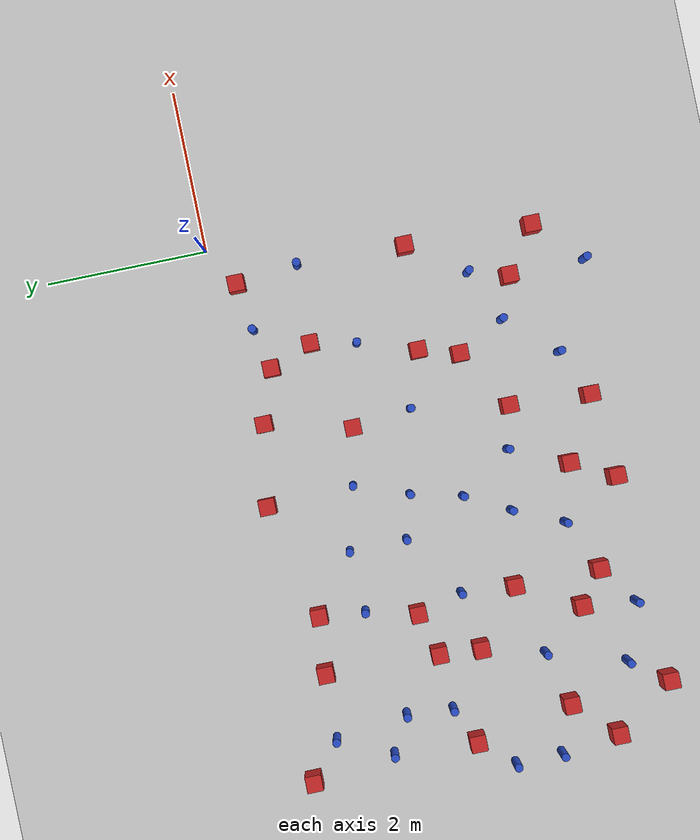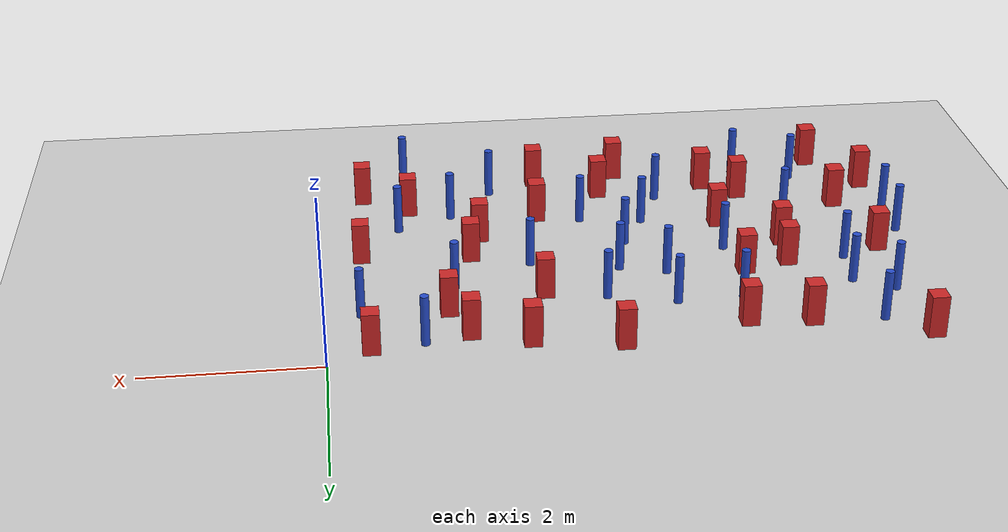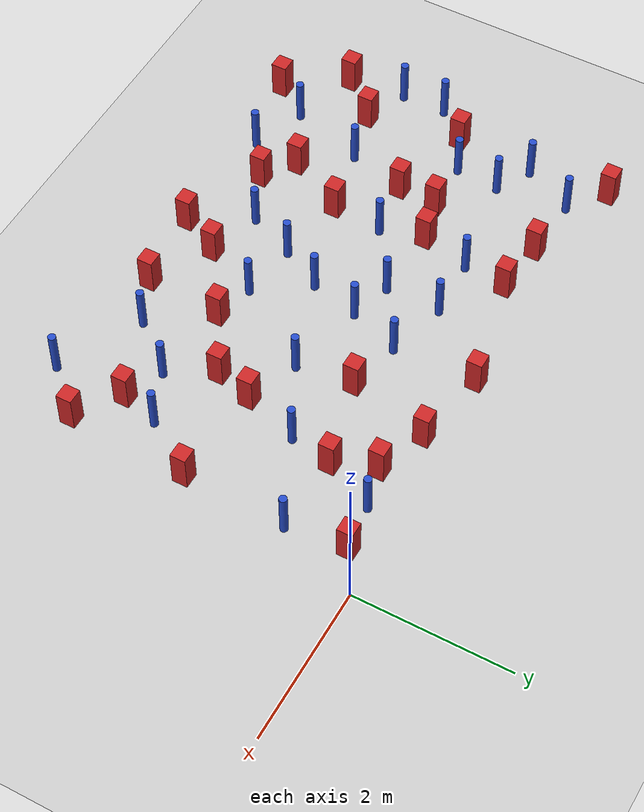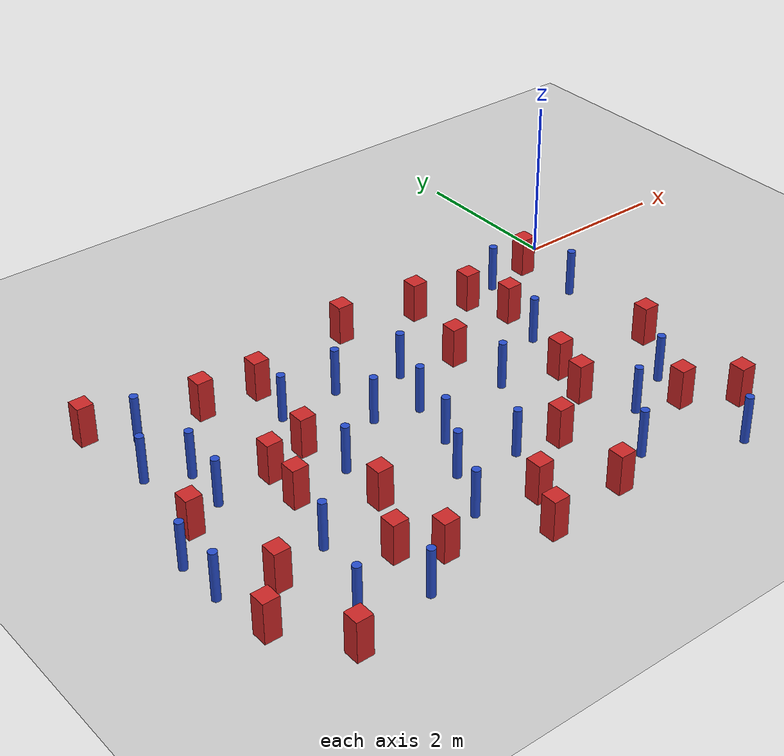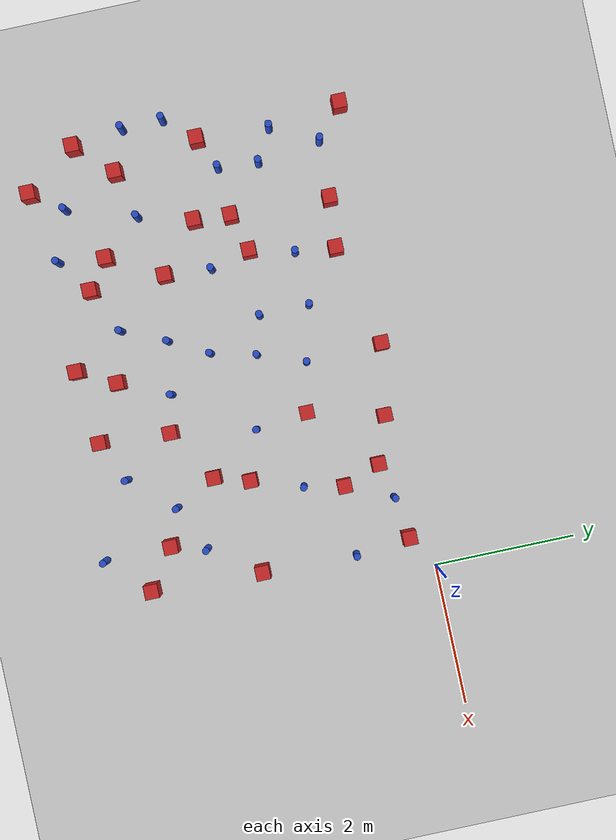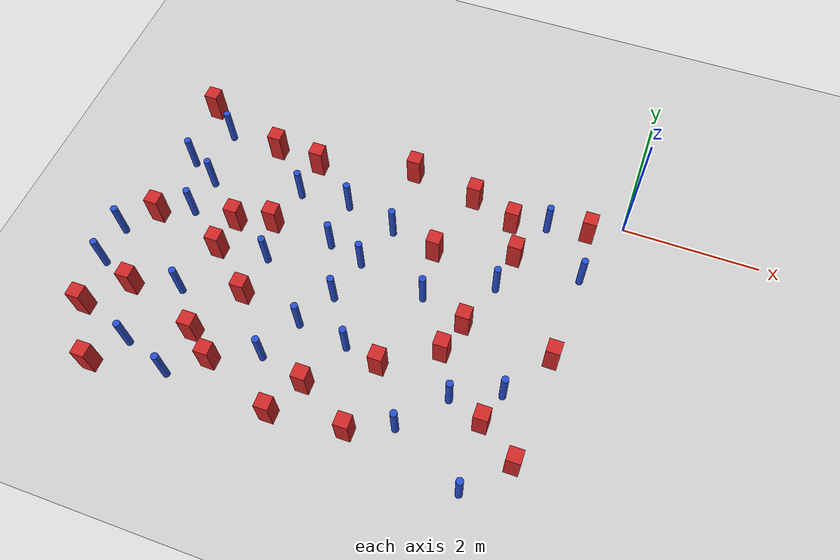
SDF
<sdf version="1.6">
 <world name="default">
  <model name="ground_plane">
   <static>1</static>
   <link name="link">
    <collision name="collision">
     <geometry><plane><normal>0 0 1</normal><size>100 100</size></plane></geometry>
     <surface><friction><ode><mu>100</mu><mu2>50</mu2></ode></friction></surface>
    </collision>
    <visual name="visual">
     <cast_shadows>0</cast_shadows>
     <geometry><plane><normal>0 0 1</normal><size>100 100</size></plane></geometry>
     <material>
      <ambient>1.0 1.0 1.0 1.0</ambient>
      <diffuse>0.8 0.8 0.8 1.0</diffuse>
      <specular>0.01 0.01 0.01 1.000000</specular>
     </material>
    </visual>
   </link>
  </model>
  <model name="pole_obstacle0">
   <static>true</static>
   <pose>-6.93956800883 -2.45011283821 7.38925637345e-09 -8.47170692798e-08 1.24976764937e-08 -1.74513093023e-07</pose>
   <link name="link">
    <pose>0 0 0.3 0 -0 0</pose>
    <inertial>
     <mass>1</mass>
     <inertia><ixx>0.145833</ixx><ixy>0</ixy><ixz>0</ixz><iyy>0.145833</iyy><iyz>0</iyz><izz>0.125</izz></inertia>
    </inertial>
    <collision name="collision">
     <geometry><cylinder><radius>0.05</radius><length>.6</length></cylinder></geometry>
    </collision>
    <visual name="visual">
     <geometry><cylinder><radius>0.05</radius><length>.6</length></cylinder></geometry>
     <material>
      <script><name>Gazebo/Blue</name><uri>file://media/materials/scripts/gazebo.material</uri></script>
     </material>
    </visual>
   </link>
  </model>
  <model name="square_post_obstacle5">
   <static>true</static>
   <pose>-6.35266890783 -3.25034243119 1.91545236811e-07 -7.35059704564e-06 1.12565212e-07 2.39332434364e-05</pose>
   <link name="link">
    <pose>0 0 0.25 0 -0 0</pose>
    <inertial>
     <mass>100</mass>
     <inertia>
      <ixx>0.166667</ixx>
      <ixy>0</ixy>
      <ixz>0</ixz>
      <iyy>0.166667</iyy>
      <iyz>0</iyz>
      <izz>0.166667</izz>
     </inertia>
    </inertial>
    <collision name="collision"><geometry><box><size>.2 .2 .5</size></box></geometry></collision>
    <visual name="visual">
     <geometry><box><size>.2 .2 .5</size></box></geometry>
     <material>
      <script><name>Gazebo/Red</name><uri>file://media/materials/scripts/gazebo.material</uri></script>
     </material>
    </visual>
   </link>
  </model>
  <model name="square_post_obstacle7">
   <static>true</static>
   <pose>-0.484492980676 -0.290630874998 1.91545236811e-07 -7.35059704564e-06 1.12565212e-07 2.39332434364e-05</pose>
   <link name="link">
    <pose>0 0 0.25 0 -0 0</pose>
    <inertial>
     <mass>100</mass>
     <inertia>
      <ixx>0.166667</ixx>
      <ixy>0</ixy>
      <ixz>0</ixz>
      <iyy>0.166667</iyy>
      <iyz>0</iyz>
      <izz>0.166667</izz>
     </inertia>
    </inertial>
    <collision name="collision"><geometry><box><size>.2 .2 .5</size></box></geometry></collision>
    <visual name="visual">
     <geometry><box><size>.2 .2 .5</size></box></geometry>
     <material>
      <script><name>Gazebo/Red</name><uri>file://media/materials/scripts/gazebo.material</uri></script>
     </material>
    </visual>
   </link>
  </model>
  <model name="square_post_obstacle9">
   <static>true</static>
   <pose>-4.67292048843 -0.449817612617 1.91545236811e-07 -7.35059704564e-06 1.12565212e-07 2.39332434364e-05</pose>
   <link name="link">
    <pose>0 0 0.25 0 -0 0</pose>
    <inertial>
     <mass>100</mass>
     <inertia>
      <ixx>0.166667</ixx>
      <ixy>0</ixy>
      <ixz>0</ixz>
      <iyy>0.166667</iyy>
      <iyz>0</iyz>
      <izz>0.166667</izz>
     </inertia>
    </inertial>
    <collision name="collision"><geometry><box><size>.2 .2 .5</size></box></geometry></collision>
    <visual name="visual">
     <geometry><box><size>.2 .2 .5</size></box></geometry>
     <material>
      <script><name>Gazebo/Red</name><uri>file://media/materials/scripts/gazebo.material</uri></script>
     </material>
    </visual>
   </link>
  </model>
  <model name="pole_obstacle15">
   <static>true</static>
   <pose>-2.09844437394 -3.99238147252 7.38925637345e-09 -8.47170692797e-08 1.24976764881e-08 -1.74513093029e-07</pose>
   <link name="link">
    <pose>0 0 0.3 0 -0 0</pose>
    <inertial>
     <mass>1</mass>
     <inertia><ixx>0.145833</ixx><ixy>0</ixy><ixz>0</ixz><iyy>0.145833</iyy><iyz>0</iyz><izz>0.125</izz></inertia>
    </inertial>
    <collision name="collision">
     <geometry><cylinder><radius>0.05</radius><length>.6</length></cylinder></geometry>
    </collision>
    <visual name="visual">
     <geometry><cylinder><radius>0.05</radius><length>.6</length></cylinder></geometry>
     <material>
      <script><name>Gazebo/Blue</name><uri>file://media/materials/scripts/gazebo.material</uri></script>
     </material>
    </visual>
   </link>
  </model>
  <model name="pole_obstacle17">
   <static>true</static>
   <pose>-5.68042597307 -3.07643465659 7.38925637345e-09 -8.47170692798e-08 1.24976764937e-08 -1.74513093023e-07</pose>
   <link name="link">
    <pose>0 0 0.3 0 -0 0</pose>
    <inertial>
     <mass>1</mass>
     <inertia><ixx>0.145833</ixx><ixy>0</ixy><ixz>0</ixz><iyy>0.145833</iyy><iyz>0</iyz><izz>0.125</izz></inertia>
    </inertial>
    <collision name="collision">
     <geometry><cylinder><radius>0.05</radius><length>.6</length></cylinder></geometry>
    </collision>
    <visual name="visual">
     <geometry><cylinder><radius>0.05</radius><length>.6</length></cylinder></geometry>
     <material>
      <script><name>Gazebo/Blue</name><uri>file://media/materials/scripts/gazebo.material</uri></script>
     </material>
    </visual>
   </link>
  </model>
  <model name="square_post_obstacle26">
   <static>true</static>
   <pose>-5.37728125611 -0.385562265781 1.91545236811e-07 -7.35059704564e-06 1.12565212e-07 2.39332434364e-05</pose>
   <link name="link">
    <pose>0 0 0.25 0 -0 0</pose>
    <inertial>
     <mass>100</mass>
     <inertia>
      <ixx>0.166667</ixx>
      <ixy>0</ixy>
      <ixz>0</ixz>
      <iyy>0.166667</iyy>
      <iyz>0</iyz>
      <izz>0.166667</izz>
     </inertia>
    </inertial>
    <collision name="collision"><geometry><box><size>.2 .2 .5</size></box></geometry></collision>
    <visual name="visual">
     <geometry><box><size>.2 .2 .5</size></box></geometry>
     <material>
      <script><name>Gazebo/Red</name><uri>file://media/materials/scripts/gazebo.material</uri></script>
     </material>
    </visual>
   </link>
  </model>
  <model name="square_post_obstacle30">
   <static>true</static>
   <pose>-1.06029108826 -3.57707996638 1.91545236811e-07 -7.35059704564e-06 1.12565212e-07 2.39332434364e-05</pose>
   <link name="link">
    <pose>0 0 0.25 0 -0 0</pose>
    <inertial>
     <mass>100</mass>
     <inertia>
      <ixx>0.166667</ixx>
      <ixy>0</ixy>
      <ixz>0</ixz>
      <iyy>0.166667</iyy>
      <iyz>0</iyz>
      <izz>0.166667</izz>
     </inertia>
    </inertial>
    <collision name="collision"><geometry><box><size>.2 .2 .5</size></box></geometry></collision>
    <visual name="visual">
     <geometry><box><size>.2 .2 .5</size></box></geometry>
     <material>
      <script><name>Gazebo/Red</name><uri>file://media/materials/scripts/gazebo.material</uri></script>
     </material>
    </visual>
   </link>
  </model>
  <model name="pole_obstacle24">
   <static>true</static>
   <pose>-6.51897693069 -1.00974621083 7.38925637345e-09 -8.471706928e-08 1.24976765101e-08 -1.74513093015e-07</pose>
   <link name="link">
    <pose>0 0 0.3 0 -0 0</pose>
    <inertial>
     <mass>1</mass>
     <inertia><ixx>0.145833</ixx><ixy>0</ixy><ixz>0</ixz><iyy>0.145833</iyy><iyz>0</iyz><izz>0.125</izz></inertia>
    </inertial>
    <collision name="collision">
     <geometry><cylinder><radius>0.05</radius><length>.6</length></cylinder></geometry>
    </collision>
    <visual name="visual">
     <geometry><cylinder><radius>0.05</radius><length>.6</length></cylinder></geometry>
     <material>
      <script><name>Gazebo/Blue</name><uri>file://media/materials/scripts/gazebo.material</uri></script>
     </material>
    </visual>
   </link>
  </model>
  <model name="square_post_obstacle34">
   <static>true</static>
   <pose>-1.72919010458 -2.29908930222 1.91545236811e-07 -7.35059704564e-06 1.12565212e-07 2.39332434364e-05</pose>
   <link name="link">
    <pose>0 0 0.25 0 -0 0</pose>
    <inertial>
     <mass>100</mass>
     <inertia>
      <ixx>0.166667</ixx>
      <ixy>0</ixy>
      <ixz>0</ixz>
      <iyy>0.166667</iyy>
      <iyz>0</iyz>
      <izz>0.166667</izz>
     </inertia>
    </inertial>
    <collision name="collision"><geometry><box><size>.2 .2 .5</size></box></geometry></collision>
    <visual name="visual">
     <geometry><box><size>.2 .2 .5</size></box></geometry>
     <material>
      <script><name>Gazebo/Red</name><uri>file://media/materials/scripts/gazebo.material</uri></script>
     </material>
    </visual>
   </link>
  </model>
  <model name="pole_obstacle37">
   <static>true</static>
   <pose>-6.07242081423 -1.25559819052 7.38925637345e-09 -8.471706928e-08 1.24976765134e-08 -1.74513093015e-07</pose>
   <link name="link">
    <pose>0 0 0.3 0 -0 0</pose>
    <inertial>
     <mass>1</mass>
     <inertia><ixx>0.145833</ixx><ixy>0</ixy><ixz>0</ixz><iyy>0.145833</iyy><iyz>0</iyz><izz>0.125</izz></inertia>
    </inertial>
    <collision name="collision">
     <geometry><cylinder><radius>0.05</radius><length>.6</length></cylinder></geometry>
    </collision>
    <visual name="visual">
     <geometry><cylinder><radius>0.05</radius><length>.6</length></cylinder></geometry>
     <material>
      <script><name>Gazebo/Blue</name><uri>file://media/materials/scripts/gazebo.material</uri></script>
     </material>
    </visual>
   </link>
  </model>
  <model name="square_post_obstacle38">
   <static>true</static>
   <pose>-6.63923074529 0.0228386776194 1.91545236811e-07 -7.35059704564e-06 1.12565212e-07 2.39332434364e-05</pose>
   <link name="link">
    <pose>0 0 0.25 0 -0 0</pose>
    <inertial>
     <mass>100</mass>
     <inertia>
      <ixx>0.166667</ixx>
      <ixy>0</ixy>
      <ixz>0</ixz>
      <iyy>0.166667</iyy>
      <iyz>0</iyz>
      <izz>0.166667</izz>
     </inertia>
    </inertial>
    <collision name="collision"><geometry><box><size>.2 .2 .5</size></box></geometry></collision>
    <visual name="visual">
     <geometry><box><size>.2 .2 .5</size></box></geometry>
     <material>
      <script><name>Gazebo/Red</name><uri>file://media/materials/scripts/gazebo.material</uri></script>
     </material>
    </visual>
   </link>
  </model>
  <model name="square_post_obstacle41">
   <static>true</static>
   <pose>-5.20414122373 -3.62971018988 1.91545236811e-07 -7.35059704564e-06 1.12565212e-07 2.39332434364e-05</pose>
   <link name="link">
    <pose>0 0 0.25 0 -0 0</pose>
    <inertial>
     <mass>100</mass>
     <inertia>
      <ixx>0.166667</ixx>
      <ixy>0</ixy>
      <ixz>0</ixz>
      <iyy>0.166667</iyy>
      <iyz>0</iyz>
      <izz>0.166667</izz>
     </inertia>
    </inertial>
    <collision name="collision"><geometry><box><size>.2 .2 .5</size></box></geometry></collision>
    <visual name="visual">
     <geometry><box><size>.2 .2 .5</size></box></geometry>
     <material>
      <script><name>Gazebo/Red</name><uri>file://media/materials/scripts/gazebo.material</uri></script>
     </material>
    </visual>
   </link>
  </model>
  <model name="square_post_obstacle43">
   <static>true</static>
   <pose>-1.87515390521 -2.79060065097 1.91545236811e-07 -7.35059704564e-06 1.12565212e-07 2.39332434364e-05</pose>
   <link name="link">
    <pose>0 0 0.25 0 -0 0</pose>
    <inertial>
     <mass>100</mass>
     <inertia>
      <ixx>0.166667</ixx>
      <ixy>0</ixy>
      <ixz>0</ixz>
      <iyy>0.166667</iyy>
      <iyz>0</iyz>
      <izz>0.166667</izz>
     </inertia>
    </inertial>
    <collision name="collision"><geometry><box><size>.2 .2 .5</size></box></geometry></collision>
    <visual name="visual">
     <geometry><box><size>.2 .2 .5</size></box></geometry>
     <material>
      <script><name>Gazebo/Red</name><uri>file://media/materials/scripts/gazebo.material</uri></script>
     </material>
    </visual>
   </link>
  </model>
  <model name="pole_obstacle49">
   <static>true</static>
   <pose>-3.43609677843 -1.84355666818 7.38925637345e-09 -8.47170692796e-08 1.24976764713e-08 -1.74513093037e-07</pose>
   <link name="link">
    <pose>0 0 0.3 0 -0 0</pose>
    <inertial>
     <mass>1</mass>
     <inertia><ixx>0.145833</ixx><ixy>0</ixy><ixz>0</ixz><iyy>0.145833</iyy><iyz>0</iyz><izz>0.125</izz></inertia>
    </inertial>
    <collision name="collision">
     <geometry><cylinder><radius>0.05</radius><length>.6</length></cylinder></geometry>
    </collision>
    <visual name="visual">
     <geometry><cylinder><radius>0.05</radius><length>.6</length></cylinder></geometry>
     <material>
      <script><name>Gazebo/Blue</name><uri>file://media/materials/scripts/gazebo.material</uri></script>
     </material>
    </visual>
   </link>
  </model>
  <model name="square_post_obstacle50">
   <static>true</static>
   <pose>-5.42647552614 -1.79409149447 1.91545236811e-07 -7.35059704564e-06 1.12565212e-07 2.39332434364e-05</pose>
   <link name="link">
    <pose>0 0 0.25 0 -0 0</pose>
    <inertial>
     <mass>100</mass>
     <inertia>
      <ixx>0.166667</ixx>
      <ixy>0</ixy>
      <ixz>0</ixz>
      <iyy>0.166667</iyy>
      <iyz>0</iyz>
      <izz>0.166667</izz>
     </inertia>
    </inertial>
    <collision name="collision"><geometry><box><size>.2 .2 .5</size></box></geometry></collision>
    <visual name="visual">
     <geometry><box><size>.2 .2 .5</size></box></geometry>
     <material>
      <script><name>Gazebo/Red</name><uri>file://media/materials/scripts/gazebo.material</uri></script>
     </material>
    </visual>
   </link>
  </model>
  <model name="square_post_obstacle67">
   <static>true</static>
   <pose>-6.82766782589 -3.75052661723 1.91545236811e-07 -7.35059704564e-06 1.12565212e-07 2.39332434364e-05</pose>
   <link name="link">
    <pose>0 0 0.25 0 -0 0</pose>
    <inertial>
     <mass>100</mass>
     <inertia>
      <ixx>0.166667</ixx>
      <ixy>0</ixy>
      <ixz>0</ixz>
      <iyy>0.166667</iyy>
      <iyz>0</iyz>
      <izz>0.166667</izz>
     </inertia>
    </inertial>
    <collision name="collision"><geometry><box><size>.2 .2 .5</size></box></geometry></collision>
    <visual name="visual">
     <geometry><box><size>.2 .2 .5</size></box></geometry>
     <material>
      <script><name>Gazebo/Red</name><uri>file://media/materials/scripts/gazebo.material</uri></script>
     </material>
    </visual>
   </link>
  </model>
  <model name="square_post_obstacle73">
   <static>true</static>
   <pose>-3.23104048398 -0.105972794465 1.91545236811e-07 -7.35059704564e-06 1.12565212e-07 2.39332434364e-05</pose>
   <link name="link">
    <pose>0 0 0.25 0 -0 0</pose>
    <inertial>
     <mass>100</mass>
     <inertia>
      <ixx>0.166667</ixx>
      <ixy>0</ixy>
      <ixz>0</ixz>
      <iyy>0.166667</iyy>
      <iyz>0</iyz>
      <izz>0.166667</izz>
     </inertia>
    </inertial>
    <collision name="collision"><geometry><box><size>.2 .2 .5</size></box></geometry></collision>
    <visual name="visual">
     <geometry><box><size>.2 .2 .5</size></box></geometry>
     <material>
      <script><name>Gazebo/Red</name><uri>file://media/materials/scripts/gazebo.material</uri></script>
     </material>
    </visual>
   </link>
  </model>
  <model name="square_post_obstacle76">
   <static>true</static>
   <pose>-1.38005092235 -1.0269054102 1.91545236811e-07 -7.35059704564e-06 1.12565212e-07 2.39332434364e-05</pose>
   <link name="link">
    <pose>0 0 0.25 0 -0 0</pose>
    <inertial>
     <mass>100</mass>
     <inertia>
      <ixx>0.166667</ixx>
      <ixy>0</ixy>
      <ixz>0</ixz>
      <iyy>0.166667</iyy>
      <iyz>0</iyz>
      <izz>0.166667</izz>
     </inertia>
    </inertial>
    <collision name="collision"><geometry><box><size>.2 .2 .5</size></box></geometry></collision>
    <visual name="visual">
     <geometry><box><size>.2 .2 .5</size></box></geometry>
     <material>
      <script><name>Gazebo/Red</name><uri>file://media/materials/scripts/gazebo.material</uri></script>
     </material>
    </visual>
   </link>
  </model>
  <model name="pole_obstacle77">
   <static>true</static>
   <pose>-3.8844210075 -3.02367985368 7.38925637345e-09 -8.47170692798e-08 1.24976764939e-08 -1.74513093025e-07</pose>
   <link name="link">
    <pose>0 0 0.3 0 -0 0</pose>
    <inertial>
     <mass>1</mass>
     <inertia><ixx>0.145833</ixx><ixy>0</ixy><ixz>0</ixz><iyy>0.145833</iyy><iyz>0</iyz><izz>0.125</izz></inertia>
    </inertial>
    <collision name="collision">
     <geometry><cylinder><radius>0.05</radius><length>.6</length></cylinder></geometry>
    </collision>
    <visual name="visual">
     <geometry><cylinder><radius>0.05</radius><length>.6</length></cylinder></geometry>
     <material>
      <script><name>Gazebo/Blue</name><uri>file://media/materials/scripts/gazebo.material</uri></script>
     </material>
    </visual>
   </link>
  </model>
  <model name="square_post_obstacle77">
   <static>true</static>
   <pose>-4.79870245917 -2.87024151157 1.91545236811e-07 -7.35059704564e-06 1.12565212e-07 2.39332434364e-05</pose>
   <link name="link">
    <pose>0 0 0.25 0 -0 0</pose>
    <inertial>
     <mass>100</mass>
     <inertia>
      <ixx>0.166667</ixx>
      <ixy>0</ixy>
      <ixz>0</ixz>
      <iyy>0.166667</iyy>
      <iyz>0</iyz>
      <izz>0.166667</izz>
     </inertia>
    </inertial>
    <collision name="collision"><geometry><box><size>.2 .2 .5</size></box></geometry></collision>
    <visual name="visual">
     <geometry><box><size>.2 .2 .5</size></box></geometry>
     <material>
      <script><name>Gazebo/Red</name><uri>file://media/materials/scripts/gazebo.material</uri></script>
     </material>
    </visual>
   </link>
  </model>
  <model name="pole_obstacle79">
   <static>true</static>
   <pose>-5.98512218536 -4.04208488836 7.38925637345e-09 -8.47170692796e-08 1.24976764791e-08 -1.74513093031e-07</pose>
   <link name="link">
    <pose>0 0 0.3 0 -0 0</pose>
    <inertial>
     <mass>1</mass>
     <inertia><ixx>0.145833</ixx><ixy>0</ixy><ixz>0</ixz><iyy>0.145833</iyy><iyz>0</iyz><izz>0.125</izz></inertia>
    </inertial>
    <collision name="collision">
     <geometry><cylinder><radius>0.05</radius><length>.6</length></cylinder></geometry>
    </collision>
    <visual name="visual">
     <geometry><cylinder><radius>0.05</radius><length>.6</length></cylinder></geometry>
     <material>
      <script><name>Gazebo/Blue</name><uri>file://media/materials/scripts/gazebo.material</uri></script>
     </material>
    </visual>
   </link>
  </model>
  <model name="pole_obstacle80">
   <static>true</static>
   <pose>-4.16194192164 -3.64056064033 7.38925637345e-09 -8.47170692798e-08 1.24976764937e-08 -1.74513093023e-07</pose>
   <link name="link">
    <pose>0 0 0.3 0 -0 0</pose>
    <inertial>
     <mass>1</mass>
     <inertia><ixx>0.145833</ixx><ixy>0</ixy><ixz>0</ixz><iyy>0.145833</iyy><iyz>0</iyz><izz>0.125</izz></inertia>
    </inertial>
    <collision name="collision">
     <geometry><cylinder><radius>0.05</radius><length>.6</length></cylinder></geometry>
    </collision>
    <visual name="visual">
     <geometry><cylinder><radius>0.05</radius><length>.6</length></cylinder></geometry>
     <material>
      <script><name>Gazebo/Blue</name><uri>file://media/materials/scripts/gazebo.material</uri></script>
     </material>
    </visual>
   </link>
  </model>
  <model name="pole_obstacle91">
   <static>true</static>
   <pose>-6.93099663642 -3.03149222873 7.38925637345e-09 -8.47170692798e-08 1.24976764937e-08 -1.74513093023e-07</pose>
   <link name="link">
    <pose>0 0 0.3 0 -0 0</pose>
    <inertial>
     <mass>1</mass>
     <inertia><ixx>0.145833</ixx><ixy>0</ixy><ixz>0</ixz><iyy>0.145833</iyy><iyz>0</iyz><izz>0.125</izz></inertia>
    </inertial>
    <collision name="collision">
     <geometry><cylinder><radius>0.05</radius><length>.6</length></cylinder></geometry>
    </collision>
    <visual name="visual">
     <geometry><cylinder><radius>0.05</radius><length>.6</length></cylinder></geometry>
     <material>
      <script><name>Gazebo/Blue</name><uri>file://media/materials/scripts/gazebo.material</uri></script>
     </material>
    </visual>
   </link>
  </model>
  <model name="pole_obstacle95">
   <static>true</static>
   <pose>-3.96931506891 -1.68995859317 7.38925637345e-09 -8.47170692799e-08 1.24976765021e-08 -1.7451309302e-07</pose>
   <link name="link">
    <pose>0 0 0.3 0 -0 0</pose>
    <inertial>
     <mass>1</mass>
     <inertia><ixx>0.145833</ixx><ixy>0</ixy><ixz>0</ixz><iyy>0.145833</iyy><iyz>0</iyz><izz>0.125</izz></inertia>
    </inertial>
    <collision name="collision">
     <geometry><cylinder><radius>0.05</radius><length>.6</length></cylinder></geometry>
    </collision>
    <visual name="visual">
     <geometry><cylinder><radius>0.05</radius><length>.6</length></cylinder></geometry>
     <material>
      <script><name>Gazebo/Blue</name><uri>file://media/materials/scripts/gazebo.material</uri></script>
     </material>
    </visual>
   </link>
  </model>
  <model name="pole_obstacle96">
   <static>true</static>
   <pose>-1.04377152851 -4.52797469942 7.38925637345e-09 -8.47170692799e-08 1.2497676505e-08 -1.74513093018e-07</pose>
   <link name="link">
    <pose>0 0 0.3 0 -0 0</pose>
    <inertial>
     <mass>1</mass>
     <inertia><ixx>0.145833</ixx><ixy>0</ixy><ixz>0</ixz><iyy>0.145833</iyy><iyz>0</iyz><izz>0.125</izz></inertia>
    </inertial>
    <collision name="collision">
     <geometry><cylinder><radius>0.05</radius><length>.6</length></cylinder></geometry>
    </collision>
    <visual name="visual">
     <geometry><cylinder><radius>0.05</radius><length>.6</length></cylinder></geometry>
     <material>
      <script><name>Gazebo/Blue</name><uri>file://media/materials/scripts/gazebo.material</uri></script>
     </material>
    </visual>
   </link>
  </model>
  <model name="square_post_obstacle87">
   <static>true</static>
   <pose>-3.45733803492 -3.83261932024 1.91545236811e-07 -7.35059704564e-06 1.12565212e-07 2.39332434364e-05</pose>
   <link name="link">
    <pose>0 0 0.25 0 -0 0</pose>
    <inertial>
     <mass>100</mass>
     <inertia>
      <ixx>0.166667</ixx>
      <ixy>0</ixy>
      <ixz>0</ixz>
      <iyy>0.166667</iyy>
      <iyz>0</iyz>
      <izz>0.166667</izz>
     </inertia>
    </inertial>
    <collision name="collision"><geometry><box><size>.2 .2 .5</size></box></geometry></collision>
    <visual name="visual">
     <geometry><box><size>.2 .2 .5</size></box></geometry>
     <material>
      <script><name>Gazebo/Red</name><uri>file://media/materials/scripts/gazebo.material</uri></script>
     </material>
    </visual>
   </link>
  </model>
  <model name="square_post_obstacle89">
   <static>true</static>
   <pose>-0.510896934147 -3.96607854816 1.91545236811e-07 -7.35059704564e-06 1.12565212e-07 2.39332434364e-05</pose>
   <link name="link">
    <pose>0 0 0.25 0 -0 0</pose>
    <inertial>
     <mass>100</mass>
     <inertia>
      <ixx>0.166667</ixx>
      <ixy>0</ixy>
      <ixz>0</ixz>
      <iyy>0.166667</iyy>
      <iyz>0</iyz>
      <izz>0.166667</izz>
     </inertia>
    </inertial>
    <collision name="collision"><geometry><box><size>.2 .2 .5</size></box></geometry></collision>
    <visual name="visual">
     <geometry><box><size>.2 .2 .5</size></box></geometry>
     <material>
      <script><name>Gazebo/Red</name><uri>file://media/materials/scripts/gazebo.material</uri></script>
     </material>
    </visual>
   </link>
  </model>
  <model name="square_post_obstacle91">
   <static>true</static>
   <pose>-4.80102907581 -3.93107686862 1.91545236811e-07 -7.35059704564e-06 1.12565212e-07 2.39332434364e-05</pose>
   <link name="link">
    <pose>0 0 0.25 0 -0 0</pose>
    <inertial>
     <mass>100</mass>
     <inertia>
      <ixx>0.166667</ixx>
      <ixy>0</ixy>
      <ixz>0</ixz>
      <iyy>0.166667</iyy>
      <iyz>0</iyz>
      <izz>0.166667</izz>
     </inertia>
    </inertial>
    <collision name="collision"><geometry><box><size>.2 .2 .5</size></box></geometry></collision>
    <visual name="visual">
     <geometry><box><size>.2 .2 .5</size></box></geometry>
     <material>
      <script><name>Gazebo/Red</name><uri>file://media/materials/scripts/gazebo.material</uri></script>
     </material>
    </visual>
   </link>
  </model>
  <model name="square_post_obstacle93">
   <static>true</static>
   <pose>-2.49647610303 -1.32595353818 1.91545236811e-07 -7.35059704564e-06 1.12565212e-07 2.39332434364e-05</pose>
   <link name="link">
    <pose>0 0 0.25 0 -0 0</pose>
    <inertial>
     <mass>100</mass>
     <inertia>
      <ixx>0.166667</ixx>
      <ixy>0</ixy>
      <ixz>0</ixz>
      <iyy>0.166667</iyy>
      <iyz>0</iyz>
      <izz>0.166667</izz>
     </inertia>
    </inertial>
    <collision name="collision"><geometry><box><size>.2 .2 .5</size></box></geometry></collision>
    <visual name="visual">
     <geometry><box><size>.2 .2 .5</size></box></geometry>
     <material>
      <script><name>Gazebo/Red</name><uri>file://media/materials/scripts/gazebo.material</uri></script>
     </material>
    </visual>
   </link>
  </model>
  <model name="pole_obstacle105">
   <static>true</static>
   <pose>-5.28602927973 -4.29275868748 7.38925637345e-09 -8.47170692796e-08 1.24976764786e-08 -1.74513093032e-07</pose>
   <link name="link">
    <pose>0 0 0.3 0 -0 0</pose>
    <inertial>
     <mass>1</mass>
     <inertia><ixx>0.145833</ixx><ixy>0</ixy><ixz>0</ixz><iyy>0.145833</iyy><iyz>0</iyz><izz>0.125</izz></inertia>
    </inertial>
    <collision name="collision">
     <geometry><cylinder><radius>0.05</radius><length>.6</length></cylinder></geometry>
    </collision>
    <visual name="visual">
     <geometry><cylinder><radius>0.05</radius><length>.6</length></cylinder></geometry>
     <material>
      <script><name>Gazebo/Blue</name><uri>file://media/materials/scripts/gazebo.material</uri></script>
     </material>
    </visual>
   </link>
  </model>
  <model name="square_post_obstacle102">
   <static>true</static>
   <pose>-2.68698305178 -4.25134762423 1.91545236811e-07 -7.35059704564e-06 1.12565212e-07 2.39332434364e-05</pose>
   <link name="link">
    <pose>0 0 0.25 0 -0 0</pose>
    <inertial>
     <mass>100</mass>
     <inertia>
      <ixx>0.166667</ixx>
      <ixy>0</ixy>
      <ixz>0</ixz>
      <iyy>0.166667</iyy>
      <iyz>0</iyz>
      <izz>0.166667</izz>
     </inertia>
    </inertial>
    <collision name="collision"><geometry><box><size>.2 .2 .5</size></box></geometry></collision>
    <visual name="visual">
     <geometry><box><size>.2 .2 .5</size></box></geometry>
     <material>
      <script><name>Gazebo/Red</name><uri>file://media/materials/scripts/gazebo.material</uri></script>
     </material>
    </visual>
   </link>
  </model>
  <model name="square_post_obstacle105">
   <static>true</static>
   <pose>-0.441600177832 -2.39740006575 1.91545236811e-07 -7.35059704564e-06 1.12565212e-07 2.39332434364e-05</pose>
   <link name="link">
    <pose>0 0 0.25 0 -0 0</pose>
    <inertial>
     <mass>100</mass>
     <inertia>
      <ixx>0.166667</ixx>
      <ixy>0</ixy>
      <ixz>0</ixz>
      <iyy>0.166667</iyy>
      <iyz>0</iyz>
      <izz>0.166667</izz>
     </inertia>
    </inertial>
    <collision name="collision"><geometry><box><size>.2 .2 .5</size></box></geometry></collision>
    <visual name="visual">
     <geometry><box><size>.2 .2 .5</size></box></geometry>
     <material>
      <script><name>Gazebo/Red</name><uri>file://media/materials/scripts/gazebo.material</uri></script>
     </material>
    </visual>
   </link>
  </model>
  <model name="square_post_obstacle107">
   <static>true</static>
   <pose>-6.30563003564 -4.48836004644 1.91545236811e-07 -7.35059704564e-06 1.12565212e-07 2.39332434364e-05</pose>
   <link name="link">
    <pose>0 0 0.25 0 -0 0</pose>
    <inertial>
     <mass>100</mass>
     <inertia>
      <ixx>0.166667</ixx>
      <ixy>0</ixy>
      <ixz>0</ixz>
      <iyy>0.166667</iyy>
      <iyz>0</iyz>
      <izz>0.166667</izz>
     </inertia>
    </inertial>
    <collision name="collision"><geometry><box><size>.2 .2 .5</size></box></geometry></collision>
    <visual name="visual">
     <geometry><box><size>.2 .2 .5</size></box></geometry>
     <material>
      <script><name>Gazebo/Red</name><uri>file://media/materials/scripts/gazebo.material</uri></script>
     </material>
    </visual>
   </link>
  </model>
  <model name="square_post_obstacle109">
   <static>true</static>
   <pose>-2.23421979236 -0.271225431449 1.91545236811e-07 -7.35059704564e-06 1.12565212e-07 2.39332434364e-05</pose>
   <link name="link">
    <pose>0 0 0.25 0 -0 0</pose>
    <inertial>
     <mass>100</mass>
     <inertia>
      <ixx>0.166667</ixx>
      <ixy>0</ixy>
      <ixz>0</ixz>
      <iyy>0.166667</iyy>
      <iyz>0</iyz>
      <izz>0.166667</izz>
     </inertia>
    </inertial>
    <collision name="collision"><geometry><box><size>.2 .2 .5</size></box></geometry></collision>
    <visual name="visual">
     <geometry><box><size>.2 .2 .5</size></box></geometry>
     <material>
      <script><name>Gazebo/Red</name><uri>file://media/materials/scripts/gazebo.material</uri></script>
     </material>
    </visual>
   </link>
  </model>
  <model name="pole_obstacle120">
   <static>true</static>
   <pose>-6.19460657408 -0.352227165909 7.38925637345e-09 -8.47170692798e-08 1.24976765003e-08 -1.7451309302e-07</pose>
   <link name="link">
    <pose>0 0 0.3 0 -0 0</pose>
    <inertial>
     <mass>1</mass>
     <inertia><ixx>0.145833</ixx><ixy>0</ixy><ixz>0</ixz><iyy>0.145833</iyy><iyz>0</iyz><izz>0.125</izz></inertia>
    </inertial>
    <collision name="collision">
     <geometry><cylinder><radius>0.05</radius><length>.6</length></cylinder></geometry>
    </collision>
    <visual name="visual">
     <geometry><cylinder><radius>0.05</radius><length>.6</length></cylinder></geometry>
     <material>
      <script><name>Gazebo/Blue</name><uri>file://media/materials/scripts/gazebo.material</uri></script>
     </material>
    </visual>
   </link>
  </model>
  <model name="pole_obstacle128">
   <static>true</static>
   <pose>-1.07447616328 -0.374308259823 7.38925637345e-09 -8.47170692799e-08 1.24976765065e-08 -1.74513093017e-07</pose>
   <link name="link">
    <pose>0 0 0.3 0 -0 0</pose>
    <inertial>
     <mass>1</mass>
     <inertia><ixx>0.145833</ixx><ixy>0</ixy><ixz>0</ixz><iyy>0.145833</iyy><iyz>0</iyz><izz>0.125</izz></inertia>
    </inertial>
    <collision name="collision">
     <geometry><cylinder><radius>0.05</radius><length>.6</length></cylinder></geometry>
    </collision>
    <visual name="visual">
     <geometry><cylinder><radius>0.05</radius><length>.6</length></cylinder></geometry>
     <material>
      <script><name>Gazebo/Blue</name><uri>file://media/materials/scripts/gazebo.material</uri></script>
     </material>
    </visual>
   </link>
  </model>
  <model name="pole_obstacle131">
   <static>true</static>
   <pose>-0.39462621028 -1.06305701847 7.38925637345e-09 -8.47170692798e-08 1.24976765025e-08 -1.74513093018e-07</pose>
   <link name="link">
    <pose>0 0 0.3 0 -0 0</pose>
    <inertial>
     <mass>1</mass>
     <inertia><ixx>0.145833</ixx><ixy>0</ixy><ixz>0</ixz><iyy>0.145833</iyy><iyz>0</iyz><izz>0.125</izz></inertia>
    </inertial>
    <collision name="collision">
     <geometry><cylinder><radius>0.05</radius><length>.6</length></cylinder></geometry>
    </collision>
    <visual name="visual">
     <geometry><cylinder><radius>0.05</radius><length>.6</length></cylinder></geometry>
     <material>
      <script><name>Gazebo/Blue</name><uri>file://media/materials/scripts/gazebo.material</uri></script>
     </material>
    </visual>
   </link>
  </model>
  <model name="pole_obstacle133">
   <static>true</static>
   <pose>-4.73383844485 -1.01516123475 7.38925637345e-09 -8.471706928e-08 1.24976765101e-08 -1.74513093015e-07</pose>
   <link name="link">
    <pose>0 0 0.3 0 -0 0</pose>
    <inertial>
     <mass>1</mass>
     <inertia><ixx>0.145833</ixx><ixy>0</ixy><ixz>0</ixz><iyy>0.145833</iyy><iyz>0</iyz><izz>0.125</izz></inertia>
    </inertial>
    <collision name="collision">
     <geometry><cylinder><radius>0.05</radius><length>.6</length></cylinder></geometry>
    </collision>
    <visual name="visual">
     <geometry><cylinder><radius>0.05</radius><length>.6</length></cylinder></geometry>
     <material>
      <script><name>Gazebo/Blue</name><uri>file://media/materials/scripts/gazebo.material</uri></script>
     </material>
    </visual>
   </link>
  </model>
  <model name="square_post_obstacle117">
   <static>true</static>
   <pose>-5.46641626923 -2.3102577381 1.91545236811e-07 -7.35059704564e-06 1.12565212e-07 2.39332434364e-05</pose>
   <link name="link">
    <pose>0 0 0.25 0 -0 0</pose>
    <inertial>
     <mass>100</mass>
     <inertia>
      <ixx>0.166667</ixx>
      <ixy>0</ixy>
      <ixz>0</ixz>
      <iyy>0.166667</iyy>
      <iyz>0</iyz>
      <izz>0.166667</izz>
     </inertia>
    </inertial>
    <collision name="collision"><geometry><box><size>.2 .2 .5</size></box></geometry></collision>
    <visual name="visual">
     <geometry><box><size>.2 .2 .5</size></box></geometry>
     <material>
      <script><name>Gazebo/Red</name><uri>file://media/materials/scripts/gazebo.material</uri></script>
     </material>
    </visual>
   </link>
  </model>
  <model name="pole_obstacle140">
   <static>true</static>
   <pose>-3.59304001506 -2.47821268782 7.38925637345e-09 -8.47170692798e-08 1.24976764939e-08 -1.74513093025e-07</pose>
   <link name="link">
    <pose>0 0 0.3 0 -0 0</pose>
    <inertial>
     <mass>1</mass>
     <inertia><ixx>0.145833</ixx><ixy>0</ixy><ixz>0</ixz><iyy>0.145833</iyy><iyz>0</iyz><izz>0.125</izz></inertia>
    </inertial>
    <collision name="collision">
     <geometry><cylinder><radius>0.05</radius><length>.6</length></cylinder></geometry>
    </collision>
    <visual name="visual">
     <geometry><cylinder><radius>0.05</radius><length>.6</length></cylinder></geometry>
     <material>
      <script><name>Gazebo/Blue</name><uri>file://media/materials/scripts/gazebo.material</uri></script>
     </material>
    </visual>
   </link>
  </model>
  <model name="pole_obstacle151">
   <static>true</static>
   <pose>-3.14103132811 -3.13243791461 7.38925637345e-09 -8.471706928e-08 1.24976765098e-08 -1.74513093016e-07</pose>
   <link name="link">
    <pose>0 0 0.3 0 -0 0</pose>
    <inertial>
     <mass>1</mass>
     <inertia><ixx>0.145833</ixx><ixy>0</ixy><ixz>0</ixz><iyy>0.145833</iyy><iyz>0</iyz><izz>0.125</izz></inertia>
    </inertial>
    <collision name="collision">
     <geometry><cylinder><radius>0.05</radius><length>.6</length></cylinder></geometry>
    </collision>
    <visual name="visual">
     <geometry><cylinder><radius>0.05</radius><length>.6</length></cylinder></geometry>
     <material>
      <script><name>Gazebo/Blue</name><uri>file://media/materials/scripts/gazebo.material</uri></script>
     </material>
    </visual>
   </link>
  </model>
  <model name="square_post_obstacle151">
   <static>true</static>
   <pose>-6.57499116844 -2.03640121991 1.91545236811e-07 -7.35059704564e-06 1.12565212e-07 2.39332434364e-05</pose>
   <link name="link">
    <pose>0 0 0.25 0 -0 0</pose>
    <inertial>
     <mass>100</mass>
     <inertia>
      <ixx>0.166667</ixx>
      <ixy>0</ixy>
      <ixz>0</ixz>
      <iyy>0.166667</iyy>
      <iyz>0</iyz>
      <izz>0.166667</izz>
     </inertia>
    </inertial>
    <collision name="collision"><geometry><box><size>.2 .2 .5</size></box></geometry></collision>
    <visual name="visual">
     <geometry><box><size>.2 .2 .5</size></box></geometry>
     <material>
      <script><name>Gazebo/Red</name><uri>file://media/materials/scripts/gazebo.material</uri></script>
     </material>
    </visual>
   </link>
  </model>
  <model name="pole_obstacle157">
   <static>true</static>
   <pose>-3.19358846043 -1.18157044861 7.38925637345e-09 -8.47170692796e-08 1.24976764713e-08 -1.74513093037e-07</pose>
   <link name="link">
    <pose>0 0 0.3 0 -0 0</pose>
    <inertial>
     <mass>1</mass>
     <inertia><ixx>0.145833</ixx><ixy>0</ixy><ixz>0</ixz><iyy>0.145833</iyy><iyz>0</iyz><izz>0.125</izz></inertia>
    </inertial>
    <collision name="collision">
     <geometry><cylinder><radius>0.05</radius><length>.6</length></cylinder></geometry>
    </collision>
    <visual name="visual">
     <geometry><cylinder><radius>0.05</radius><length>.6</length></cylinder></geometry>
     <material>
      <script><name>Gazebo/Blue</name><uri>file://media/materials/scripts/gazebo.material</uri></script>
     </material>
    </visual>
   </link>
  </model>
  <model name="square_post_obstacle152">
   <static>true</static>
   <pose>-2.61707071447 -3.2533880305 1.91545236811e-07 -7.35059704564e-06 1.12565212e-07 2.39332434364e-05</pose>
   <link name="link">
    <pose>0 0 0.25 0 -0 0</pose>
    <inertial>
     <mass>100</mass>
     <inertia>
      <ixx>0.166667</ixx>
      <ixy>0</ixy>
      <ixz>0</ixz>
      <iyy>0.166667</iyy>
      <iyz>0</iyz>
      <izz>0.166667</izz>
     </inertia>
    </inertial>
    <collision name="collision"><geometry><box><size>.2 .2 .5</size></box></geometry></collision>
    <visual name="visual">
     <geometry><box><size>.2 .2 .5</size></box></geometry>
     <material>
      <script><name>Gazebo/Red</name><uri>file://media/materials/scripts/gazebo.material</uri></script>
     </material>
    </visual>
   </link>
  </model>
  <model name="square_post_obstacle155">
   <static>true</static>
   <pose>-4.89066607272 -1.64358962645 1.91545236811e-07 -7.35059704564e-06 1.12565212e-07 2.39332434364e-05</pose>
   <link name="link">
    <pose>0 0 0.25 0 -0 0</pose>
    <inertial>
     <mass>100</mass>
     <inertia>
      <ixx>0.166667</ixx>
      <ixy>0</ixy>
      <ixz>0</ixz>
      <iyy>0.166667</iyy>
      <iyz>0</iyz>
      <izz>0.166667</izz>
     </inertia>
    </inertial>
    <collision name="collision"><geometry><box><size>.2 .2 .5</size></box></geometry></collision>
    <visual name="visual">
     <geometry><box><size>.2 .2 .5</size></box></geometry>
     <material>
      <script><name>Gazebo/Red</name><uri>file://media/materials/scripts/gazebo.material</uri></script>
     </material>
    </visual>
   </link>
  </model>
  <model name="square_post_obstacle160">
   <static>true</static>
   <pose>-3.73054844377 -4.360822457 1.91545236811e-07 -7.35059704564e-06 1.12565212e-07 2.39332434364e-05</pose>
   <link name="link">
    <pose>0 0 0.25 0 -0 0</pose>
    <inertial>
     <mass>100</mass>
     <inertia>
      <ixx>0.166667</ixx>
      <ixy>0</ixy>
      <ixz>0</ixz>
      <iyy>0.166667</iyy>
      <iyz>0</iyz>
      <izz>0.166667</izz>
     </inertia>
    </inertial>
    <collision name="collision"><geometry><box><size>.2 .2 .5</size></box></geometry></collision>
    <visual name="visual">
     <geometry><box><size>.2 .2 .5</size></box></geometry>
     <material>
      <script><name>Gazebo/Red</name><uri>file://media/materials/scripts/gazebo.material</uri></script>
     </material>
    </visual>
   </link>
  </model>
  <model name="pole_obstacle168">
   <static>true</static>
   <pose>-2.4103890313 -2.06528838788 7.38925637345e-09 -8.47170692798e-08 1.24976764939e-08 -1.74513093025e-07</pose>
   <link name="link">
    <pose>0 0 0.3 0 -0 0</pose>
    <inertial>
     <mass>1</mass>
     <inertia><ixx>0.145833</ixx><ixy>0</ixy><ixz>0</ixz><iyy>0.145833</iyy><iyz>0</iyz><izz>0.125</izz></inertia>
    </inertial>
    <collision name="collision">
     <geometry><cylinder><radius>0.05</radius><length>.6</length></cylinder></geometry>
    </collision>
    <visual name="visual">
     <geometry><cylinder><radius>0.05</radius><length>.6</length></cylinder></geometry>
     <material>
      <script><name>Gazebo/Blue</name><uri>file://media/materials/scripts/gazebo.material</uri></script>
     </material>
    </visual>
   </link>
  </model>
  <model name="pole_obstacle174">
   <static>true</static>
   <pose>-0.91497859833 -3.09456859744 7.38925637345e-09 -8.47170692799e-08 1.2497676509e-08 -1.74513093016e-07</pose>
   <link name="link">
    <pose>0 0 0.3 0 -0 0</pose>
    <inertial>
     <mass>1</mass>
     <inertia><ixx>0.145833</ixx><ixy>0</ixy><ixz>0</ixz><iyy>0.145833</iyy><iyz>0</iyz><izz>0.125</izz></inertia>
    </inertial>
    <collision name="collision">
     <geometry><cylinder><radius>0.05</radius><length>.6</length></cylinder></geometry>
    </collision>
    <visual name="visual">
     <geometry><cylinder><radius>0.05</radius><length>.6</length></cylinder></geometry>
     <material>
      <script><name>Gazebo/Blue</name><uri>file://media/materials/scripts/gazebo.material</uri></script>
     </material>
    </visual>
   </link>
  </model>
  <model name="pole_obstacle187">
   <static>true</static>
   <pose>-6.11860486052 -1.82738106482 7.38925637345e-09 -8.471706928e-08 1.24976765134e-08 -1.74513093015e-07</pose>
   <link name="link">
    <pose>0 0 0.3 0 -0 0</pose>
    <inertial>
     <mass>1</mass>
     <inertia><ixx>0.145833</ixx><ixy>0</ixy><ixz>0</ixz><iyy>0.145833</iyy><iyz>0</iyz><izz>0.125</izz></inertia>
    </inertial>
    <collision name="collision">
     <geometry><cylinder><radius>0.05</radius><length>.6</length></cylinder></geometry>
    </collision>
    <visual name="visual">
     <geometry><cylinder><radius>0.05</radius><length>.6</length></cylinder></geometry>
     <material>
      <script><name>Gazebo/Blue</name><uri>file://media/materials/scripts/gazebo.material</uri></script>
     </material>
    </visual>
   </link>
  </model>
  <model name="square_post_obstacle194">
   <static>true</static>
   <pose>-1.58401484694 -0.496101542082 1.91545236811e-07 -7.35059704564e-06 1.12565212e-07 2.39332434364e-05</pose>
   <link name="link">
    <pose>0 0 0.25 0 -0 0</pose>
    <inertial>
     <mass>100</mass>
     <inertia>
      <ixx>0.166667</ixx>
      <ixy>0</ixy>
      <ixz>0</ixz>
      <iyy>0.166667</iyy>
      <iyz>0</iyz>
      <izz>0.166667</izz>
     </inertia>
    </inertial>
    <collision name="collision"><geometry><box><size>.2 .2 .5</size></box></geometry></collision>
    <visual name="visual">
     <geometry><box><size>.2 .2 .5</size></box></geometry>
     <material>
      <script><name>Gazebo/Red</name><uri>file://media/materials/scripts/gazebo.material</uri></script>
     </material>
    </visual>
   </link>
  </model>
  <model name="pole_obstacle188">
   <static>true</static>
   <pose>-1.56675808061 -3.38361875292 7.38925637345e-09 -8.47170692799e-08 1.24976765053e-08 -1.74513093017e-07</pose>
   <link name="link">
    <pose>0 0 0.3 0 -0 0</pose>
    <inertial>
     <mass>1</mass>
     <inertia><ixx>0.145833</ixx><ixy>0</ixy><ixz>0</ixz><iyy>0.145833</iyy><iyz>0</iyz><izz>0.125</izz></inertia>
    </inertial>
    <collision name="collision">
     <geometry><cylinder><radius>0.05</radius><length>.6</length></cylinder></geometry>
    </collision>
    <visual name="visual">
     <geometry><cylinder><radius>0.05</radius><length>.6</length></cylinder></geometry>
     <material>
      <script><name>Gazebo/Blue</name><uri>file://media/materials/scripts/gazebo.material</uri></script>
     </material>
    </visual>
   </link>
  </model>
  <model name="pole_obstacle193">
   <static>true</static>
   <pose>-3.97179738924 -0.97944725668 7.38925637345e-09 -8.47170692801e-08 1.24976765196e-08 -1.74513093011e-07</pose>
   <link name="link">
    <pose>0 0 0.3 0 -0 0</pose>
    <inertial>
     <mass>1</mass>
     <inertia><ixx>0.145833</ixx><ixy>0</ixy><ixz>0</ixz><iyy>0.145833</iyy><iyz>0</iyz><izz>0.125</izz></inertia>
    </inertial>
    <collision name="collision">
     <geometry><cylinder><radius>0.05</radius><length>.6</length></cylinder></geometry>
    </collision>
    <visual name="visual">
     <geometry><cylinder><radius>0.05</radius><length>.6</length></cylinder></geometry>
     <material>
      <script><name>Gazebo/Blue</name><uri>file://media/materials/scripts/gazebo.material</uri></script>
     </material>
    </visual>
   </link>
  </model>
  <model name="pole_obstacle197">
   <static>true</static>
   <pose>-1.48691806173 -1.58525090411 7.38925637345e-09 -8.471706928e-08 1.24976765079e-08 -1.74513093017e-07</pose>
   <link name="link">
    <pose>0 0 0.3 0 -0 0</pose>
    <inertial>
     <mass>1</mass>
     <inertia><ixx>0.145833</ixx><ixy>0</ixy><ixz>0</ixz><iyy>0.145833</iyy><iyz>0</iyz><izz>0.125</izz></inertia>
    </inertial>
    <collision name="collision">
     <geometry><cylinder><radius>0.05</radius><length>.6</length></cylinder></geometry>
    </collision>
    <visual name="visual">
     <geometry><cylinder><radius>0.05</radius><length>.6</length></cylinder></geometry>
     <material>
      <script><name>Gazebo/Blue</name><uri>file://media/materials/scripts/gazebo.material</uri></script>
     </material>
    </visual>
   </link>
  </model>
  <model name="pole_obstacle202">
   <static>true</static>
   <pose>-4.74734759799 -2.21346684549 7.38925637345e-09 -8.47170692798e-08 1.24976764937e-08 -1.74513093023e-07</pose>
   <link name="link">
    <pose>0 0 0.3 0 -0 0</pose>
    <inertial>
     <mass>1</mass>
     <inertia><ixx>0.145833</ixx><ixy>0</ixy><ixz>0</ixz><iyy>0.145833</iyy><iyz>0</iyz><izz>0.125</izz></inertia>
    </inertial>
    <collision name="collision">
     <geometry><cylinder><radius>0.05</radius><length>.6</length></cylinder></geometry>
    </collision>
    <visual name="visual">
     <geometry><cylinder><radius>0.05</radius><length>.6</length></cylinder></geometry>
     <material>
      <script><name>Gazebo/Blue</name><uri>file://media/materials/scripts/gazebo.material</uri></script>
     </material>
    </visual>
   </link>
  </model>
 </world>
</sdf>
